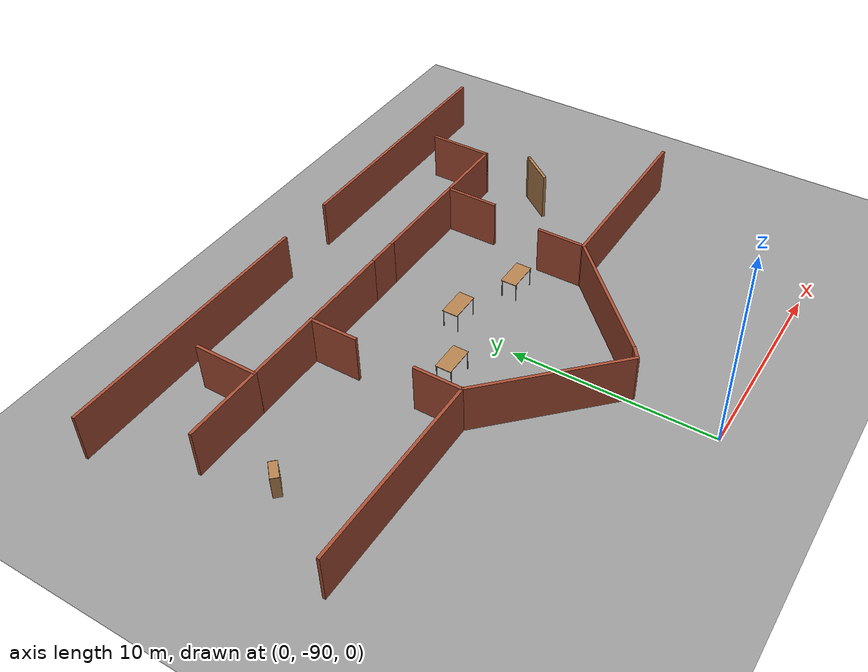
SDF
<sdf version="1.6">
 <world name="default">
  <model name="map_palace_v2_model_1_0">
   <pose>-3.1e-05 -55 0 0 -0 3.14</pose>
   <link name="Wall_201">
    <collision name="Wall_201_Collision">
     <geometry><box><size>3.25 0.15 2.5</size></box></geometry>
     <pose>0 0 1.25 0 -0 0</pose>
    </collision>
    <visual name="Wall_201_Visual">
     <pose>0 0 1.25 0 -0 0</pose>
     <geometry><box><size>3.25 0.15 2.5</size></box></geometry>
     <material>
      <script><uri>file://media/materials/scripts/gazebo.material</uri><name>Gazebo/Bricks</name></script>
      <ambient>1 1 1 1</ambient>
     </material>
     <meta><layer>0</layer></meta>
    </visual>
    <pose>-9.98806 16.0309 0 0 -0 -1.5708</pose>
   </link>
   <link name="Wall_203">
    <collision name="Wall_203_Collision">
     <geometry><box><size>3.75 0.15 2.5</size></box></geometry>
     <pose>0 0 1.25 0 -0 0</pose>
    </collision>
    <visual name="Wall_203_Visual">
     <pose>0 0 1.25 0 -0 0</pose>
     <geometry><box><size>3.75 0.15 2.5</size></box></geometry>
     <material>
      <script><uri>file://media/materials/scripts/gazebo.material</uri><name>Gazebo/Bricks</name></script>
      <ambient>1 1 1 1</ambient>
     </material>
     <meta><layer>0</layer></meta>
    </visual>
    <pose>-8.18806 17.5809 0 0 -0 0</pose>
   </link>
   <link name="Wall_204">
    <collision name="Wall_204_Collision">
     <geometry><box><size>2.75 0.15 2.5</size></box></geometry>
     <pose>0 0 1.25 0 -0 0</pose>
    </collision>
    <visual name="Wall_204_Visual">
     <pose>0 0 1.25 0 -0 0</pose>
     <geometry><box><size>2.75 0.15 2.5</size></box></geometry>
     <material>
      <script><uri>file://media/materials/scripts/gazebo.material</uri><name>Gazebo/Bricks</name></script>
      <ambient>1 1 1 1</ambient>
     </material>
     <meta><layer>0</layer></meta>
    </visual>
    <pose>-6.38806 18.8809 0 0 -0 1.5708</pose>
   </link>
   <link name="Wall_206">
    <collision name="Wall_206_Collision">
     <geometry><box><size>5.25 0.15 2.5</size></box></geometry>
     <pose>0 0 1.25 0 -0 0</pose>
    </collision>
    <visual name="Wall_206_Visual">
     <pose>0 0 1.25 0 -0 0</pose>
     <geometry><box><size>5.25 0.15 2.5</size></box></geometry>
     <material>
      <script><uri>file://media/materials/scripts/gazebo.material</uri><name>Gazebo/Bricks</name></script>
      <ambient>1 1 1 1</ambient>
     </material>
     <meta><layer>0</layer></meta>
    </visual>
    <pose>-3.83806 17.5809 0 0 -0 0</pose>
   </link>
   <link name="Wall_208">
    <collision name="Wall_208_Collision">
     <geometry><box><size>1.75 0.15 2.5</size></box></geometry>
     <pose>0 0 1.25 0 -0 0</pose>
    </collision>
    <visual name="Wall_208_Visual">
     <pose>0 0 1.25 0 -0 0</pose>
     <geometry><box><size>1.75 0.15 2.5</size></box></geometry>
     <material>
      <script><uri>file://media/materials/scripts/gazebo.material</uri><name>Gazebo/Bricks</name></script>
      <ambient>1 1 1 1</ambient>
     </material>
     <meta><layer>0</layer></meta>
    </visual>
    <pose>-0.488058 17.5809 0 0 -0 0</pose>
   </link>
   <link name="Wall_209">
    <collision name="Wall_209_Collision">
     <geometry><box><size>4.75 0.15 2.5</size></box></geometry>
     <pose>0 0 1.25 0 -0 0</pose>
    </collision>
    <visual name="Wall_209_Visual">
     <pose>0 0 1.25 0 -0 0</pose>
     <geometry><box><size>4.75 0.15 2.5</size></box></geometry>
     <material>
      <script><uri>file://media/materials/scripts/gazebo.material</uri><name>Gazebo/Bricks</name></script>
      <ambient>1 1 1 1</ambient>
     </material>
     <meta><layer>0</layer></meta>
    </visual>
    <pose>2.61194 17.5809 0 0 -0 0</pose>
   </link>
   <link name="Wall_210">
    <collision name="Wall_210_Collision">
     <geometry><box><size>2.5 0.15 2.5</size></box></geometry>
     <pose>0 0 1.25 0 -0 0</pose>
    </collision>
    <visual name="Wall_210_Visual">
     <pose>0 0 1.25 0 -0 0</pose>
     <geometry><box><size>2.5 0.15 2.5</size></box></geometry>
     <material>
      <script><uri>file://media/materials/scripts/gazebo.material</uri><name>Gazebo/Bricks</name></script>
      <ambient>1 1 1 1</ambient>
     </material>
     <meta><layer>0</layer></meta>
    </visual>
    <pose>4.91194 18.7559 0 0 -0 1.5708</pose>
   </link>
   <link name="Wall_212">
    <collision name="Wall_212_Collision">
     <geometry><box><size>4 0.15 2.5</size></box></geometry>
     <pose>0 0 1.25 0 -0 0</pose>
    </collision>
    <visual name="Wall_212_Visual">
     <pose>0 0 1.25 0 -0 0</pose>
     <geometry><box><size>4 0.15 2.5</size></box></geometry>
     <material>
      <script><uri>file://media/materials/scripts/gazebo.material</uri><name>Gazebo/Bricks</name></script>
      <ambient>1 1 1 1</ambient>
     </material>
     <meta><layer>0</layer></meta>
    </visual>
    <pose>6.83694 17.5809 0 0 -0 0</pose>
   </link>
   <link name="Wall_213">
    <collision name="Wall_213_Collision">
     <geometry><box><size>3.25 0.15 2.5</size></box></geometry>
     <pose>0 0 1.25 0 -0 0</pose>
    </collision>
    <visual name="Wall_213_Visual">
     <pose>0 0 1.25 0 -0 0</pose>
     <geometry><box><size>3.25 0.15 2.5</size></box></geometry>
     <material>
      <script><uri>file://media/materials/scripts/gazebo.material</uri><name>Gazebo/Bricks</name></script>
      <ambient>1 1 1 1</ambient>
     </material>
     <meta><layer>0</layer></meta>
    </visual>
    <pose>8.76194 16.0309 0 0 -0 -1.5708</pose>
   </link>
   <link name="Wall_215">
    <collision name="Wall_215_Collision">
     <geometry><box><size>4 0.15 2.5</size></box></geometry>
     <pose>0 0 1.25 0 -0 0</pose>
    </collision>
    <visual name="Wall_215_Visual">
     <pose>0 0 1.25 0 -0 0</pose>
     <geometry><box><size>4 0.15 2.5</size></box></geometry>
     <material>
      <script><uri>file://media/materials/scripts/gazebo.material</uri><name>Gazebo/Bricks</name></script>
      <ambient>1 1 1 1</ambient>
     </material>
     <meta><layer>0</layer></meta>
    </visual>
    <pose>10.6869 17.5809 0 0 -0 0</pose>
   </link>
   <link name="Wall_23">
    <collision name="Wall_23_Collision">
     <geometry><box><size>13 0.15 2.5</size></box></geometry>
     <pose>0 0 1.25 0 -0 0</pose>
    </collision>
    <visual name="Wall_23_Visual">
     <pose>0 0 1.25 0 -0 0</pose>
     <geometry><box><size>13 0.15 2.5</size></box></geometry>
     <material>
      <script><uri>file://media/materials/scripts/gazebo.material</uri><name>Gazebo/Bricks</name></script>
      <ambient>1 1 1 1</ambient>
     </material>
     <meta><layer>0</layer></meta>
    </visual>
    <pose>-8.49431 12.9975 0 0 -0 0</pose>
   </link>
   <link name="Wall_238">
    <collision name="Wall_238_Collision">
     <geometry><box><size>2.5 0.15 2.5</size></box></geometry>
     <pose>0 0 1.25 0 -0 0</pose>
    </collision>
    <visual name="Wall_238_Visual">
     <pose>0 0 1.25 0 -0 0</pose>
     <geometry><box><size>2.5 0.15 2.5</size></box></geometry>
     <material>
      <script><uri>file://media/materials/scripts/gazebo.material</uri><name>Gazebo/Bricks</name></script>
      <ambient>1 1 1 1</ambient>
     </material>
     <meta><layer>0</layer></meta>
    </visual>
    <pose>-5.81931 24.2725 0 0 -0 -1.5708</pose>
   </link>
   <link name="Wall_240">
    <collision name="Wall_240_Collision">
     <geometry><box><size>2.5 0.15 2.5</size></box></geometry>
     <pose>0 0 1.25 0 -0 0</pose>
    </collision>
    <visual name="Wall_240_Visual">
     <pose>0 0 1.25 0 -0 0</pose>
     <geometry><box><size>2.5 0.15 2.5</size></box></geometry>
     <material>
      <script><uri>file://media/materials/scripts/gazebo.material</uri><name>Gazebo/Bricks</name></script>
      <ambient>1 1 1 1</ambient>
     </material>
     <meta><layer>0</layer></meta>
    </visual>
    <pose>5.03069 24.2725 0 0 -0 -1.5708</pose>
   </link>
   <link name="Wall_242">
    <collision name="Wall_242_Collision">
     <geometry><box><size>0.726635 0.15 2.5</size></box></geometry>
     <pose>0 0 1.25 0 -0 0</pose>
    </collision>
    <visual name="Wall_242_Visual">
     <pose>0 0 1.25 0 -0 0</pose>
     <geometry><box><size>0.726635 0.15 2.5</size></box></geometry>
     <material>
      <script><uri>file://media/materials/scripts/gazebo.material</uri><name>Gazebo/Bricks</name></script>
      <ambient>1 1 1 1</ambient>
     </material>
     <meta><layer>0</layer></meta>
    </visual>
    <pose>-0.571086 30.6447 0 0 -0 0.660019</pose>
   </link>
   <link name="Wall_25">
    <collision name="Wall_25_Collision">
     <geometry><box><size>13.5 0.15 2.5</size></box></geometry>
     <pose>0 0 1.25 0 -0 0</pose>
    </collision>
    <visual name="Wall_25_Visual">
     <pose>0 0 1.25 0 -0 0</pose>
     <geometry><box><size>13.5 0.15 2.5</size></box></geometry>
     <material>
      <script><uri>file://media/materials/scripts/gazebo.material</uri><name>Gazebo/Bricks</name></script>
      <ambient>1 1 1 1</ambient>
     </material>
     <meta><layer>0</layer></meta>
    </visual>
    <pose>7.70569 12.9975 0 0 -0 0</pose>
   </link>
   <link name="Wall_41">
    <collision name="Wall_41_Collision">
     <geometry><box><size>9.75 0.15 2.5</size></box></geometry>
     <pose>0 0 1.25 0 -0 0</pose>
    </collision>
    <visual name="Wall_41_Visual">
     <pose>0 0 1.25 0 -0 0</pose>
     <geometry><box><size>9.75 0.15 2.5</size></box></geometry>
     <material>
      <script><uri>file://media/materials/scripts/gazebo.material</uri><name>Gazebo/Bricks</name></script>
      <ambient>1 1 1 1</ambient>
     </material>
     <meta><layer>0</layer></meta>
    </visual>
    <pose>9.83069 25.4475 0 0 -0 3.14159</pose>
   </link>
   <link name="Wall_42">
    <collision name="Wall_42_Collision">
     <geometry><box><size>7.75 0.15 2.5</size></box></geometry>
     <pose>0 0 1.25 0 -0 0</pose>
    </collision>
    <visual name="Wall_42_Visual">
     <pose>0 0 1.25 0 -0 0</pose>
     <geometry><box><size>7.75 0.15 2.5</size></box></geometry>
     <material>
      <script><uri>file://media/materials/scripts/gazebo.material</uri><name>Gazebo/Bricks</name></script>
      <ambient>1 1 1 1</ambient>
     </material>
     <meta><layer>0</layer></meta>
    </visual>
    <pose>2.34368 28.1345 0 0 -0 2.35619</pose>
   </link>
   <link name="Wall_6">
    <collision name="Wall_6_Collision">
     <geometry><box><size>7.25 0.15 2.5</size></box></geometry>
     <pose>0 0 1.25 0 -0 0</pose>
    </collision>
    <visual name="Wall_6_Visual">
     <pose>0 0 1.25 0 -0 0</pose>
     <geometry><box><size>7.25 0.15 2.5</size></box></geometry>
     <material>
      <script><uri>file://media/materials/scripts/gazebo.material</uri><name>Gazebo/Bricks</name></script>
      <ambient>1 1 1 1</ambient>
     </material>
     <meta><layer>0</layer></meta>
    </visual>
    <pose>-3.30908 27.9577 0 0 -0 -2.35619</pose>
   </link>
   <link name="Wall_7">
    <collision name="Wall_7_Collision">
     <geometry><box><size>9.25 0.15 2.5</size></box></geometry>
     <pose>0 0 1.25 0 -0 0</pose>
    </collision>
    <visual name="Wall_7_Visual">
     <pose>0 0 1.25 0 -0 0</pose>
     <geometry><box><size>9.25 0.15 2.5</size></box></geometry>
     <material>
      <script><uri>file://media/materials/scripts/gazebo.material</uri><name>Gazebo/Bricks</name></script>
      <ambient>1 1 1 1</ambient>
     </material>
     <meta><layer>0</layer></meta>
    </visual>
    <pose>-10.3693 25.4475 0 0 -0 3.14159</pose>
   </link>
   <static>1</static>
  </model>
  <model name="table">
   <static>1</static>
   <link name="link">
    <collision name="surface">
     <pose>0 0 1 0 -0 0</pose>
     <geometry><box><size>1.5 0.8 0.03</size></box></geometry>
     <surface><friction><ode><mu>0.6</mu><mu2>0.6</mu2></ode></friction></surface>
    </collision>
    <visual name="visual1">
     <pose>0 0 1 0 -0 0</pose>
     <geometry><box><size>1.5 0.8 0.03</size></box></geometry>
     <material>
      <script><uri>file://media/materials/scripts/gazebo.material</uri><name>Gazebo/Wood</name></script>
     </material>
    </visual>
    <collision name="front_left_leg">
     <pose>0.68 0.38 0.5 0 -0 0</pose>
     <geometry><cylinder><radius>0.02</radius><length>1</length></cylinder></geometry>
    </collision>
    <visual name="front_left_leg">
     <pose>0.68 0.38 0.5 0 -0 0</pose>
     <geometry><cylinder><radius>0.02</radius><length>1</length></cylinder></geometry>
     <material>
      <script><uri>file://media/materials/scripts/gazebo.material</uri><name>Gazebo/Grey</name></script>
     </material>
    </visual>
    <collision name="front_right_leg">
     <pose>0.68 -0.38 0.5 0 -0 0</pose>
     <geometry><cylinder><radius>0.02</radius><length>1</length></cylinder></geometry>
    </collision>
    <visual name="front_right_leg">
     <pose>0.68 -0.38 0.5 0 -0 0</pose>
     <geometry><cylinder><radius>0.02</radius><length>1</length></cylinder></geometry>
     <material>
      <script><uri>file://media/materials/scripts/gazebo.material</uri><name>Gazebo/Grey</name></script>
     </material>
    </visual>
    <collision name="back_right_leg">
     <pose>-0.68 -0.38 0.5 0 -0 0</pose>
     <geometry><cylinder><radius>0.02</radius><length>1</length></cylinder></geometry>
    </collision>
    <visual name="back_right_leg">
     <pose>-0.68 -0.38 0.5 0 -0 0</pose>
     <geometry><cylinder><radius>0.02</radius><length>1</length></cylinder></geometry>
     <material>
      <script><uri>file://media/materials/scripts/gazebo.material</uri><name>Gazebo/Grey</name></script>
     </material>
    </visual>
    <collision name="back_left_leg">
     <pose>-0.68 0.38 0.5 0 -0 0</pose>
     <geometry><cylinder><radius>0.02</radius><length>1</length></cylinder></geometry>
    </collision>
    <visual name="back_left_leg">
     <pose>-0.68 0.38 0.5 0 -0 0</pose>
     <geometry><cylinder><radius>0.02</radius><length>1</length></cylinder></geometry>
     <material>
      <script><uri>file://media/materials/scripts/gazebo.material</uri><name>Gazebo/Grey</name></script>
     </material>
    </visual>
   </link>
   <pose>0.611236 -76.6859 0 0 -0 0</pose>
  </model>
  <model name="table_0">
   <static>1</static>
   <link name="link">
    <collision name="surface">
     <pose>0 0 1 0 -0 0</pose>
     <geometry><box><size>1.5 0.8 0.03</size></box></geometry>
     <surface><friction><ode><mu>0.6</mu><mu2>0.6</mu2></ode></friction></surface>
    </collision>
    <visual name="visual1">
     <pose>0 0 1 0 -0 0</pose>
     <geometry><box><size>1.5 0.8 0.03</size></box></geometry>
     <material>
      <script><uri>file://media/materials/scripts/gazebo.material</uri><name>Gazebo/Wood</name></script>
     </material>
    </visual>
    <collision name="front_left_leg">
     <pose>0.68 0.38 0.5 0 -0 0</pose>
     <geometry><cylinder><radius>0.02</radius><length>1</length></cylinder></geometry>
    </collision>
    <visual name="front_left_leg">
     <pose>0.68 0.38 0.5 0 -0 0</pose>
     <geometry><cylinder><radius>0.02</radius><length>1</length></cylinder></geometry>
     <material>
      <script><uri>file://media/materials/scripts/gazebo.material</uri><name>Gazebo/Grey</name></script>
     </material>
    </visual>
    <collision name="front_right_leg">
     <pose>0.68 -0.38 0.5 0 -0 0</pose>
     <geometry><cylinder><radius>0.02</radius><length>1</length></cylinder></geometry>
    </collision>
    <visual name="front_right_leg">
     <pose>0.68 -0.38 0.5 0 -0 0</pose>
     <geometry><cylinder><radius>0.02</radius><length>1</length></cylinder></geometry>
     <material>
      <script><uri>file://media/materials/scripts/gazebo.material</uri><name>Gazebo/Grey</name></script>
     </material>
    </visual>
    <collision name="back_right_leg">
     <pose>-0.68 -0.38 0.5 0 -0 0</pose>
     <geometry><cylinder><radius>0.02</radius><length>1</length></cylinder></geometry>
    </collision>
    <visual name="back_right_leg">
     <pose>-0.68 -0.38 0.5 0 -0 0</pose>
     <geometry><cylinder><radius>0.02</radius><length>1</length></cylinder></geometry>
     <material>
      <script><uri>file://media/materials/scripts/gazebo.material</uri><name>Gazebo/Grey</name></script>
     </material>
    </visual>
    <collision name="back_left_leg">
     <pose>-0.68 0.38 0.5 0 -0 0</pose>
     <geometry><cylinder><radius>0.02</radius><length>1</length></cylinder></geometry>
    </collision>
    <visual name="back_left_leg">
     <pose>-0.68 0.38 0.5 0 -0 0</pose>
     <geometry><cylinder><radius>0.02</radius><length>1</length></cylinder></geometry>
     <material>
      <script><uri>file://media/materials/scripts/gazebo.material</uri><name>Gazebo/Grey</name></script>
     </material>
    </visual>
   </link>
   <pose>-2.57453 -78.3422 0 0 -0 0</pose>
  </model>
  <model name="table_1">
   <static>1</static>
   <link name="link">
    <collision name="surface">
     <pose>0 0 1 0 -0 0</pose>
     <geometry><box><size>1.5 0.8 0.03</size></box></geometry>
     <surface><friction><ode><mu>0.6</mu><mu2>0.6</mu2></ode></friction></surface>
    </collision>
    <visual name="visual1">
     <pose>0 0 1 0 -0 0</pose>
     <geometry><box><size>1.5 0.8 0.03</size></box></geometry>
     <material>
      <script><uri>file://media/materials/scripts/gazebo.material</uri><name>Gazebo/Wood</name></script>
     </material>
    </visual>
    <collision name="front_left_leg">
     <pose>0.68 0.38 0.5 0 -0 0</pose>
     <geometry><cylinder><radius>0.02</radius><length>1</length></cylinder></geometry>
    </collision>
    <visual name="front_left_leg">
     <pose>0.68 0.38 0.5 0 -0 0</pose>
     <geometry><cylinder><radius>0.02</radius><length>1</length></cylinder></geometry>
     <material>
      <script><uri>file://media/materials/scripts/gazebo.material</uri><name>Gazebo/Grey</name></script>
     </material>
    </visual>
    <collision name="front_right_leg">
     <pose>0.68 -0.38 0.5 0 -0 0</pose>
     <geometry><cylinder><radius>0.02</radius><length>1</length></cylinder></geometry>
    </collision>
    <visual name="front_right_leg">
     <pose>0.68 -0.38 0.5 0 -0 0</pose>
     <geometry><cylinder><radius>0.02</radius><length>1</length></cylinder></geometry>
     <material>
      <script><uri>file://media/materials/scripts/gazebo.material</uri><name>Gazebo/Grey</name></script>
     </material>
    </visual>
    <collision name="back_right_leg">
     <pose>-0.68 -0.38 0.5 0 -0 0</pose>
     <geometry><cylinder><radius>0.02</radius><length>1</length></cylinder></geometry>
    </collision>
    <visual name="back_right_leg">
     <pose>-0.68 -0.38 0.5 0 -0 0</pose>
     <geometry><cylinder><radius>0.02</radius><length>1</length></cylinder></geometry>
     <material>
      <script><uri>file://media/materials/scripts/gazebo.material</uri><name>Gazebo/Grey</name></script>
     </material>
    </visual>
    <collision name="back_left_leg">
     <pose>-0.68 0.38 0.5 0 -0 0</pose>
     <geometry><cylinder><radius>0.02</radius><length>1</length></cylinder></geometry>
    </collision>
    <visual name="back_left_leg">
     <pose>-0.68 0.38 0.5 0 -0 0</pose>
     <geometry><cylinder><radius>0.02</radius><length>1</length></cylinder></geometry>
     <material>
      <script><uri>file://media/materials/scripts/gazebo.material</uri><name>Gazebo/Grey</name></script>
     </material>
    </visual>
   </link>
   <pose>3.85671 -77.9275 0 0 -0 0</pose>
  </model>
  <model name="our_desk_1">
   <link name="link_1">
    <inertial>
     <mass>1</mass>
     <inertia>
      <ixx>0.166667</ixx>
      <ixy>0</ixy>
      <ixz>0</ixz>
      <iyy>0.166667</iyy>
      <iyz>0</iyz>
      <izz>0.166667</izz>
     </inertia>
    </inertial>
    <pose>3.3e-05 1e-06 0 1.56254 -0 0</pose>
   </link>
   <static>0</static>
   <pose>-3.05061 -54.1661 -3.25249e+06 0 -0 0</pose>
  </model>
  <model name="bookshelf_0">
   <static>1</static>
   <link name="link">
    <inertial><mass>1</mass></inertial>
    <collision name="back">
     <pose>0 0.005 0.6 0 -0 0</pose>
     <geometry><box><size>0.9 0.01 1.2</size></box></geometry>
    </collision>
    <visual name="visual1">
     <pose>0 0.005 0.6 0 -0 0</pose>
     <geometry><box><size>0.9 0.01 1.2</size></box></geometry>
     <material>
      <script><uri>file://media/materials/scripts/gazebo.material</uri><name>Gazebo/Wood</name></script>
     </material>
    </visual>
    <collision name="left_side">
     <pose>0.45 -0.195 0.6 0 -0 0</pose>
     <geometry><box><size>0.02 0.4 1.2</size></box></geometry>
    </collision>
    <visual name="visual2">
     <pose>0.45 -0.195 0.6 0 -0 0</pose>
     <geometry><box><size>0.02 0.4 1.2</size></box></geometry>
     <material>
      <script><uri>file://media/materials/scripts/gazebo.material</uri><name>Gazebo/Wood</name></script>
     </material>
    </visual>
    <collision name="right_side">
     <pose>-0.45 -0.195 0.6 0 -0 0</pose>
     <geometry><box><size>0.02 0.4 1.2</size></box></geometry>
    </collision>
    <visual name="visual3">
     <pose>-0.45 -0.195 0.6 0 -0 0</pose>
     <geometry><box><size>0.02 0.4 1.2</size></box></geometry>
     <material>
      <script><uri>file://media/materials/scripts/gazebo.material</uri><name>Gazebo/Wood</name></script>
     </material>
    </visual>
    <collision name="bottom">
     <pose>0 -0.195 0.03 0 -0 0</pose>
     <geometry><box><size>0.88 0.4 0.06</size></box></geometry>
    </collision>
    <visual name="visual4">
     <pose>0 -0.195 0.03 0 -0 0</pose>
     <geometry><box><size>0.88 0.4 0.06</size></box></geometry>
     <material>
      <script><uri>file://media/materials/scripts/gazebo.material</uri><name>Gazebo/Wood</name></script>
     </material>
    </visual>
    <collision name="top">
     <pose>0 -0.195 1.19 0 -0 0</pose>
     <geometry><box><size>0.88 0.4 0.02</size></box></geometry>
    </collision>
    <visual name="visual5">
     <pose>0 -0.195 1.19 0 -0 0</pose>
     <geometry><box><size>0.88 0.4 0.02</size></box></geometry>
     <material>
      <script><uri>file://media/materials/scripts/gazebo.material</uri><name>Gazebo/Wood</name></script>
     </material>
    </visual>
    <collision name="low_shelf">
     <pose>0 -0.195 0.43 0 -0 0</pose>
     <geometry><box><size>0.88 0.4 0.02</size></box></geometry>
    </collision>
    <visual name="visual6">
     <pose>0 -0.195 0.43 0 -0 0</pose>
     <geometry><box><size>0.88 0.4 0.02</size></box></geometry>
     <material>
      <script><uri>file://media/materials/scripts/gazebo.material</uri><name>Gazebo/Wood</name></script>
     </material>
    </visual>
    <collision name="high_shelf">
     <pose>0 -0.195 0.8 0 -0 0</pose>
     <geometry><box><size>0.88 0.4 0.02</size></box></geometry>
    </collision>
    <visual name="visual7">
     <pose>0 -0.195 0.8 0 -0 0</pose>
     <geometry><box><size>0.88 0.4 0.02</size></box></geometry>
     <material>
      <script><uri>file://media/materials/scripts/gazebo.material</uri><name>Gazebo/Wood</name></script>
     </material>
    </visual>
   </link>
   <pose>-11.7729 -75.5573 0 0 -0 0.762536</pose>
  </model>
  <model name="wall_5">
   <pose>10.2645 -75.4431 0 0 -0 0.937201</pose>
   <link name="Wall_2">
    <collision name="Wall_2_Collision">
     <geometry><box><size>2 0.15 2.5</size></box></geometry>
     <pose>0 0 1.25 0 -0 0</pose>
    </collision>
    <visual name="Wall_2_Visual">
     <pose>0 0 1.25 0 -0 0</pose>
     <geometry><box><size>2 0.15 2.5</size></box></geometry>
     <material>
      <script><uri>file://media/materials/scripts/gazebo.material</uri><name>Gazebo/Wood</name></script>
      <ambient>1 1 1 1</ambient>
     </material>
     <meta><layer>0</layer></meta>
    </visual>
    <pose>-0.005 -0 0 0 -0 0</pose>
   </link>
   <link name="Wall_3">
    <collision name="Wall_3_Collision">
     <geometry><box><size>0.16 0.15 2.5</size></box></geometry>
     <pose>0 0 1.25 0 -0 0</pose>
    </collision>
    <visual name="Wall_3_Visual">
     <pose>0 0 1.25 0 -0 0</pose>
     <geometry><box><size>0.16 0.15 2.5</size></box></geometry>
     <material>
      <script><uri>file://media/materials/scripts/gazebo.material</uri><name>Gazebo/Wood</name></script>
      <ambient>1 1 1 1</ambient>
     </material>
     <meta><layer>0</layer></meta>
    </visual>
    <pose>0.925 0 0 0 -0 0</pose>
   </link>
   <static>1</static>
  </model>
  <model name="ground_plane_8">
   <static>1</static>
   <link name="link">
    <collision name="collision">
     <geometry><plane><normal>0 0 1</normal><size>100 100</size></plane></geometry>
     <surface><friction><ode><mu>100</mu><mu2>50</mu2></ode></friction></surface>
    </collision>
    <visual name="visual">
     <cast_shadows>0</cast_shadows>
     <geometry><plane><normal>0 0 1</normal><size>100 100</size></plane></geometry>
     <material>
      <script><uri>file://media/materials/scripts/gazebo.material</uri><name>Gazebo/Grey</name></script>
     </material>
    </visual>
   </link>
   <pose>6.29769 -50.9739 0 0 -0 0</pose>
  </model>
  <model name="ground_plane">
   <static>1</static>
   <link name="link">
    <collision name="collision">
     <geometry><plane><normal>0 0 1</normal><size>100 100</size></plane></geometry>
     <surface>
      <contact><collide_bitmask>65535</collide_bitmask></contact>
      <friction><ode><mu>100</mu><mu2>50</mu2></ode></friction>
     </surface>
    </collision>
    <visual name="visual">
     <cast_shadows>0</cast_shadows>
     <geometry><plane><normal>0 0 1</normal><size>100 100</size></plane></geometry>
     <material>
      <script><uri>file://media/materials/scripts/gazebo.material</uri><name>Gazebo/Grey</name></script>
     </material>
    </visual>
   </link>
   <pose>9.31394 52.073 0 0 -0 0</pose>
  </model>
 </world>
</sdf>
